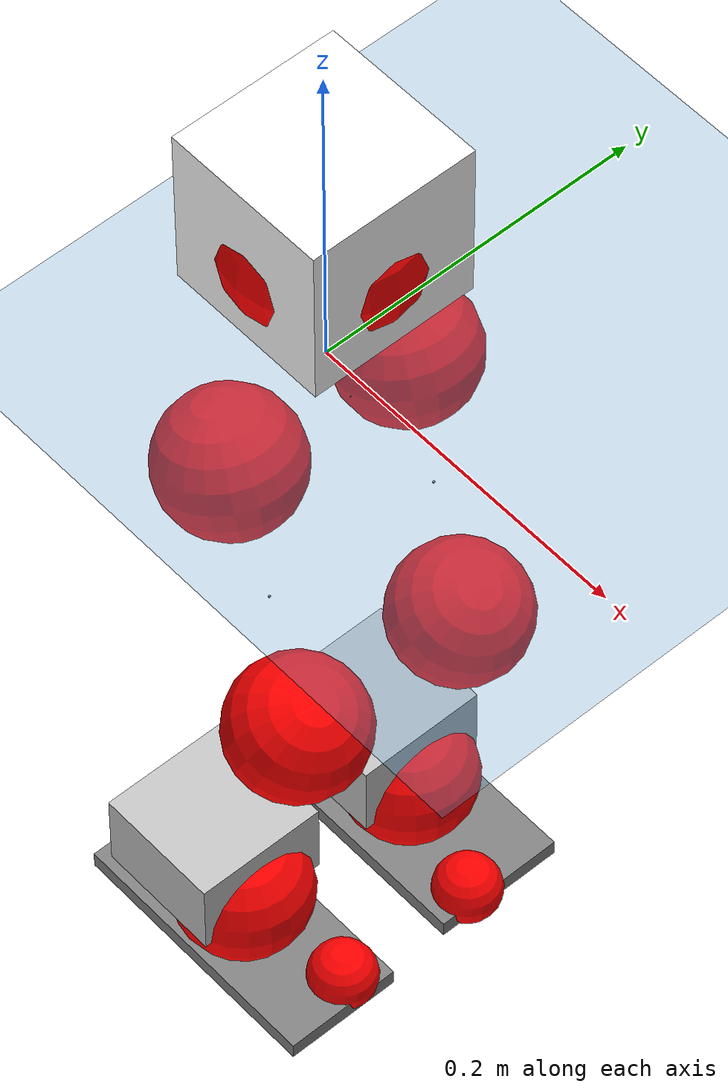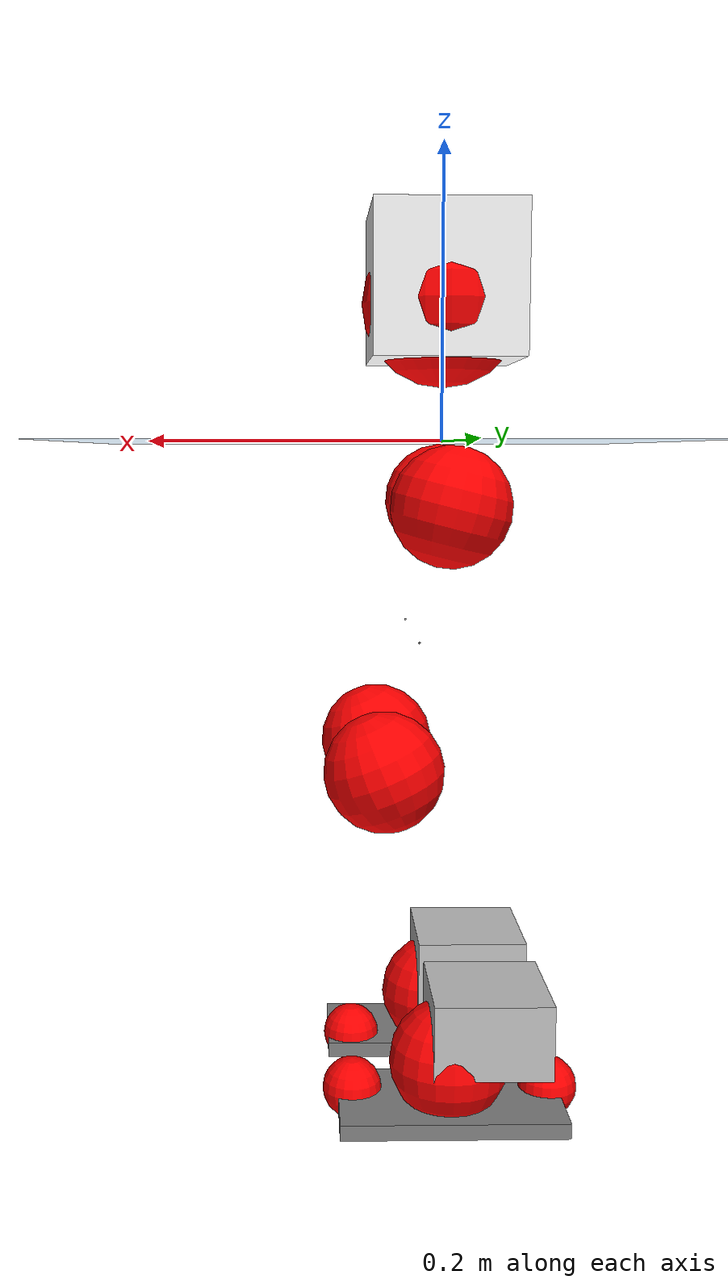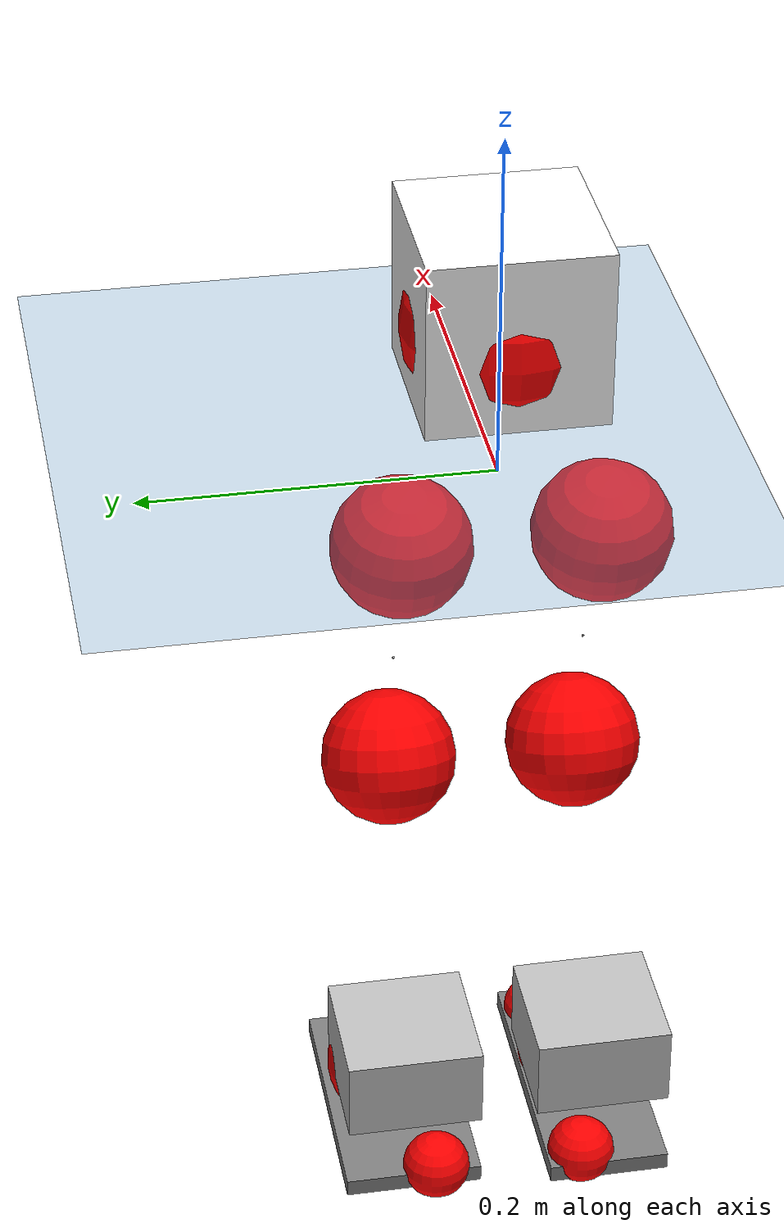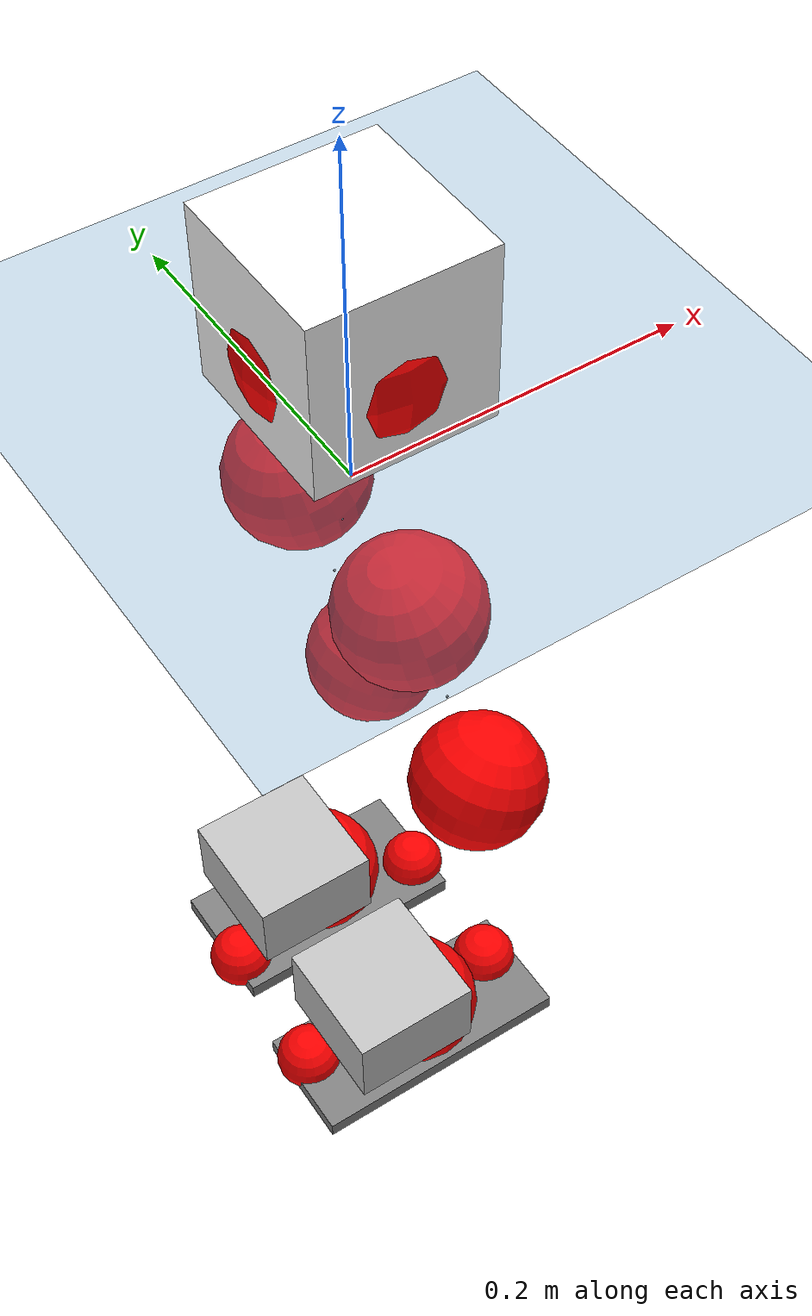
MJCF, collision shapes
<mujoco model="pi_12dof_release_v1">
  <compiler angle="radian" assetdir="assets" balanceinertia="true" inertiafromgeom="false"/>

  <option timestep="0.005" density="1.2" viscosity="2e-05"/>

  <size nkey="1"/>

  <visual>
    <quality shadowsize="8192"/>
    <map shadowclip="0.5"/>
  </visual>

  <default>
    <default class="/">
      <joint armature="0.01" damping="0.01" frictionloss="0.01"/>
      <geom contype="0" conaffinity="0" group="1" solref="-1000 -80"/>
      <site size="0.01 0.005 0.005" group="5"/>
      <general forcelimited="true" biastype="affine" gainprm="20" biasprm="0 -20 -0.5"/>
      <default class="foot">
        <geom size="0.0845 0.036 0.005" type="box" condim="6" group="4" priority="1" friction="0.9 0.2 0.2" solimp="0.015 1 0.005"/>
      </default>
      <default class="reward_collision_sphere">
        <geom group="5" rgba="1 0 0 1"/>
      </default>
    </default>
  </default>

  <asset>
    <texture type="skybox" colorspace="auto" name="//unnamed_texture_0" builtin="gradient" rgb1="0.95 0.95 0.95" rgb2="0.95 0.95 0.95" width="100" height="600"/>
    <texture type="2d" colorspace="auto" name="texplane" builtin="checker" rgb1="0.345 0.575 0.748" rgb2="0.345 0.575 0.748" markrgb="1 1 1" width="512" height="512"/>
    <material name="MatPlane" class="/" texture="texplane" texuniform="true" texrepeat="2 2" specular="0.9"/>
    <mesh name="baselink_1" class="/" file="baselink_1.STL"/>
    <mesh name="r_hip_pitch_link" class="/" file="r_hip_pitch_link.STL"/>
    <mesh name="r_hip_roll_link" class="/" file="r_hip_roll_link.STL"/>
    <mesh name="r_thigh_link" class="/" file="r_thigh_link.STL"/>
    <mesh name="r_calf_link" class="/" file="r_calf_link.STL"/>
    <mesh name="r_ankle_pitch_link" class="/" file="r_ankle_pitch_link.STL"/>
    <mesh name="r_ankle_roll_link" class="/" file="r_ankle_roll_link.STL"/>
    <mesh name="l_hip_pitch_link" class="/" file="l_hip_pitch_link.STL"/>
    <mesh name="l_hip_roll_link" class="/" file="l_hip_roll_link.STL"/>
    <mesh name="l_thigh_link" class="/" file="l_thigh_link.STL"/>
    <mesh name="l_calf_link" class="/" file="l_calf_link.STL"/>
    <mesh name="l_ankle_pitch_link" class="/" file="l_ankle_pitch_link.STL"/>
    <mesh name="l_ankle_roll_link" class="/" file="l_ankle_roll_link.STL"/>
  </asset>

  <worldbody>
    <geom name="floor" class="/" size="100 100 0.125" type="plane" group="0" material="MatPlane"/>
    <light name="toplight_shadow" class="/" pos="0 0 5" dir="0.0990148 0.0990148 -0.990148" type="directional" ambient="0.04 0.04 0.04" diffuse="0.55 0.55 0.55" specular="0.12 0.12 0.12"/>
    <light name="toplight_fill" class="/" pos="0 0 5" dir="0.0990148 0.0990148 -0.990148" type="directional" castshadow="false" ambient="0.04 0.04 0.04" diffuse="0.3 0.3 0.3" specular="0.08 0.08 0.08"/>
    <body name="trunk" pos="-3.85234e-06 -0.000228128 0.000962568" quat="1 7.14486e-06 -0.00073869 -0.000496119">
      <inertial pos="0.000856003 -0.00266888 0.0509146" quat="0.694682 0.00814365 0.00865392 0.719219" mass="2.24604" diaginertia="0.00945478 0.00185 0.0149792"/>
      <joint name="//unnamed_joint_0" type="free"/>
      <geom name="//unnamed_geom_1" class="/" type="mesh" density="0" rgba="1 1 1 1" mesh="baselink_1"/>
      <geom name="//unnamed_geom_2" class="/" size="0.050368 0.050368 0.050368" pos="0 0 0.103728" type="box" rgba="1 1 1 1"/>
      <geom name="//unnamed_geom_3" class="reward_collision_sphere" size="0.0554048" pos="0 0 0.0907617"/>
      <site name="imu" class="/" pos="0.0115572 -0.000910352 -0.0116468" size="0.0100736"/>
      <camera name="track" class="/" pos="0 -1.46146 0" quat="0.707107 0.707107 0 0" mode="trackcom"/>
      <camera name="ego_camera" class="/" pos="0.0746066 0 0.233387" quat="-0.5 -0.5 0.5 0.5"/>
      <body name="r_hip_pitch_link" pos="-0.0023202 -0.0195134 -0.0444256" quat="0.992197 -8.04384e-06 -0.124683 1.73656e-05">
        <inertial pos="0.000718601 -0.0440352 -0.000356156" quat="-0.0191682 0.706311 -0.0275666 0.707105" mass="0.381331" diaginertia="0.000104428 1.93506e-05 0.000297507"/>
        <joint name="r_hip_pitch_joint" class="/" pos="0 0 0" axis="-0.00425412 -0.99999 0.00122008" stiffness="0.0118593" range="-1.77345 1.20842" armature="0.00878517" damping="0.0135295" frictionloss="0.00927372"/>
        <geom name="//unnamed_geom_4" class="/" type="mesh" density="0" rgba="0.75294 0.75294 0.75294 1" mesh="r_hip_pitch_link"/>
        <geom name="//unnamed_geom_5" class="/" size="0.00050368 0.00050368 0.00050368" type="box" rgba="0.75294 0.75294 0.75294 1"/>
        <body name="r_hip_roll_link" pos="-0.00221991 -0.0391692 0.0025245" quat="0.999999 -0.00115176 -4.70166e-05 -0.000592561">
          <inertial pos="-0.00304698 -0.000490911 -0.0774422" quat="0.712456 -0.0800445 -0.0921427 0.69102" mass="0.387716" diaginertia="0.000330095 5.72966e-05 0.000479069"/>
          <joint name="r_hip_roll_joint" class="/" pos="0 0 0" axis="-0.999898 -0.00145878 -0.0142386" stiffness="0.000239102" range="-0.14273 0.500531" armature="0.00870102" damping="0.00255752" frictionloss="0.0111608"/>
          <geom name="//unnamed_geom_6" class="/" type="mesh" density="0" rgba="0.75294 0.75294 0.75294 1" mesh="r_hip_roll_link"/>
          <geom name="//unnamed_geom_7" class="/" size="0.00050368 0.00050368 0.00050368" type="box" rgba="0.75294 0.75294 0.75294 1"/>
          <geom name="//unnamed_geom_8" class="reward_collision_sphere" size="0.0402944"/>
          <body name="r_thigh_link" pos="0.00246698 0.00260886 -0.0909663" quat="1 4.7526e-05 3.34431e-06 1.20323e-06">
            <inertial pos="0.0002488 0.000333375 -0.0637279" quat="0.738426 0.674333 0.001131 -0.000625097" mass="0.116968" diaginertia="0.000118747 1.9674e-05 0.000213023"/>
            <joint name="r_thigh_joint" class="/" pos="0 0 0" axis="-0.00371049 -0.0034954 -0.999987" stiffness="0.00610296" range="-0.35789 0.607371" armature="0.0113133" damping="0" frictionloss="0.0111468"/>
            <geom name="//unnamed_geom_9" class="/" type="mesh" density="0" rgba="0.75294 0.75294 0.75294 1" mesh="r_thigh_link"/>
            <geom name="//unnamed_geom_10" class="/" size="0.00050368 0.00050368 0.00050368" type="box" rgba="0.75294 0.75294 0.75294 1"/>
            <body name="r_calf_link" pos="-0.00149361 -0.000976355 -0.091757" quat="0.947653 -8.65393e-06 0.319303 7.67096e-05">
              <inertial pos="-0.00315687 -0.00233366 -0.0932946" quat="0.999964 -0.00537084 -0.00645307 -0.00152648" mass="0.831038" diaginertia="0.0032725 0.000742276 0.000610114"/>
              <joint name="r_calf_joint" class="/" pos="0 0 0" axis="0.0111831 -0.999912 0.00715898" range="-1.65383 0.678279" armature="0.00896188" damping="0.00765181" frictionloss="0.00964509"/>
              <geom name="//unnamed_geom_11" class="/" type="mesh" density="0" rgba="0.75294 0.75294 0.75294 1" mesh="r_calf_link"/>
              <geom name="//unnamed_geom_12" class="/" size="0.00050368 0.00050368 0.00050368" type="box" rgba="0.75294 0.75294 0.75294 1"/>
              <geom name="//unnamed_geom_13" class="reward_collision_sphere" size="0.0402944"/>
              <body name="r_ankle_pitch_link" pos="0.00253551 -0.00138325 -0.183772" quat="0.980012 -0.00136618 -0.198934 -1.91746e-05">
                <inertial pos="0.00718071 0.00250158 -0.0026909" quat="-0.00885281 0.702803 -0.00134023 0.711329" mass="0.187816" diaginertia="0.000292272 4.50201e-05 0.000455602"/>
                <joint name="r_ankle_pitch_joint" class="/" pos="0 0 0" axis="0.00666552 -0.99992 -0.0107596" range="-1.24573 0.555692" armature="0.0113979" damping="0" frictionloss="0.0105793"/>
                <geom name="//unnamed_geom_14" class="/" type="mesh" density="0" rgba="0.75294 0.75294 0.75294 1" mesh="r_ankle_pitch_link"/>
                <geom name="//unnamed_geom_15" class="/" size="0.039287 0.0402944 0.025184" type="box" rgba="0.75294 0.75294 0.75294 1"/>
                <body name="r_ankle_roll_link" pos="0.0729147 -2.6365e-05 0.000731514" quat="0.999999 1.80877e-05 0.00116853 0.000308246">
                  <inertial pos="-0.0265835 7.02769e-05 -0.0193871" quat="0.567662 0.426145 0.430878 0.557229" mass="0.566113" diaginertia="0.00116278 0.000217314 0.00107795"/>
                  <joint name="r_ankle_roll_joint" class="/" pos="0 0 0" axis="-0.999916 0.0124448 -0.00349104" stiffness="0.00263615" range="-0.097241 0.157807" armature="0.0111497" damping="0.0139451" frictionloss="0.0101089"/>
                  <geom name="//unnamed_geom_16" class="/" type="mesh" density="0" rgba="0.75294 0.75294 0.75294 1" mesh="r_ankle_roll_link"/>
                  <geom name="//unnamed_geom_17" class="/" type="mesh" rgba="0.75294 0.75294 0.75294 1" mesh="r_ankle_roll_link"/>
                  <geom name="right_foot" class="foot" size="0.0828271 0.0358298 0.00525313" pos="-0.0507325 0 -0.0570502"/>
                  <geom name="//unnamed_geom_19" class="reward_collision_sphere" size="0.0402944" pos="-0.0497377 0 -0.0259319"/>
                  <geom name="//unnamed_geom_20" class="reward_collision_sphere" size="0.0201472" pos="0.0149213 0.0146146 -0.0518638"/>
                  <geom name="//unnamed_geom_21" class="reward_collision_sphere" size="0.0201472" pos="-0.119371 0.0146146 -0.0518638"/>
                  <site name="right_foot" class="foot" pos="-0.0507325 0 -0.0570502" size="0.0100736"/>
                </body>
              </body>
            </body>
          </body>
        </body>
      </body>
      <body name="l_hip_pitch_link" pos="0.00181549 0.0144185 -0.0451408" quat="0.992197 -9.45659e-05 -0.124683 -4.45104e-05">
        <inertial pos="0.000981532 0.0418791 -0.00228068" quat="-0.0428829 0.711037 0.0400359 0.700703" mass="0.408501" diaginertia="0.000130573 2.26083e-05 0.000368174"/>
        <joint name="l_hip_pitch_joint" class="/" pos="0 0 0" axis="-0.000512751 1 -4.39841e-05" range="-1.26444 1.75901" armature="0.00999408" damping="0.0246134" frictionloss="0.00868991"/>
        <geom name="//unnamed_geom_22" class="/" type="mesh" density="0" rgba="0.75294 0.75294 0.75294 1" mesh="l_hip_pitch_link"/>
        <geom name="//unnamed_geom_23" class="/" size="0.00050368 0.00050368 0.00050368" type="box" rgba="0.75294 0.75294 0.75294 1"/>
        <body name="l_hip_roll_link" pos="-0.00250686 0.0392926 0.00221166" quat="1 0.000242128 0.000346689 0.000394356">
          <inertial pos="-0.0035417 0.000850012 -0.0808547" quat="0.700912 -0.0749659 -0.0791793 0.704864" mass="0.376187" diaginertia="0.000306325 5.77619e-05 0.000461102"/>
          <joint name="l_hip_roll_joint" class="/" pos="0 0 0" axis="-0.999991 0.00123573 -0.00398657" range="-0.482208 0.124883" armature="0.0100463" damping="0.0198993" frictionloss="0.00884571"/>
          <geom name="//unnamed_geom_24" class="/" type="mesh" density="0" rgba="0.75294 0.75294 0.75294 1" mesh="l_hip_roll_link"/>
          <geom name="//unnamed_geom_25" class="/" size="0.00050368 0.00050368 0.00050368" type="box" rgba="0.75294 0.75294 0.75294 1"/>
          <geom name="//unnamed_geom_26" class="reward_collision_sphere" size="0.0402944"/>
          <body name="l_thigh_link" pos="-0.00226072 0.000835177 -0.0909523" quat="1 -0.000182726 0.00024277 4.58739e-05">
            <inertial pos="0.00238703 0.00132756 -0.0626354" quat="0.668577 0.743581 0.00847505 -0.00444006" mass="0.11757" diaginertia="0.000119611 2.07365e-05 0.000217463"/>
            <joint name="l_thigh_joint" class="/" pos="0 0 0" axis="0.000228332 -0.00155388 -0.999999" range="-0.644039 0.245314" armature="0.0104522" damping="0.00942316" frictionloss="0.0103341"/>
            <geom name="//unnamed_geom_27" class="/" type="mesh" density="0" rgba="0.75294 0.75294 0.75294 1" mesh="l_thigh_link"/>
            <geom name="//unnamed_geom_28" class="/" size="0.00050368 0.00050368 0.00050368" type="box" rgba="0.75294 0.75294 0.75294 1"/>
            <body name="l_calf_link" pos="0.000672701 -0.00126376 -0.0894105" quat="0.947876 -7.17656e-05 0.31864 -0.00027329">
              <inertial pos="-0.00221025 0.00407644 -0.0924644" quat="0.999965 0.00535332 -0.00588677 0.00241777" mass="0.842582" diaginertia="0.00334586 0.000718636 0.000628702"/>
              <joint name="l_calf_joint" class="/" pos="0 0 0" axis="-0.0137195 0.999901 -0.0032267" range="-0.657754 1.67432" armature="0.010369" damping="0" frictionloss="0.0106587"/>
              <geom name="//unnamed_geom_29" class="/" type="mesh" density="0" rgba="0.75294 0.75294 0.75294 1" mesh="l_calf_link"/>
              <geom name="//unnamed_geom_30" class="/" size="0.00050368 0.00050368 0.00050368" type="box" rgba="0.75294 0.75294 0.75294 1"/>
              <geom name="//unnamed_geom_31" class="reward_collision_sphere" size="0.0402944"/>
              <body name="l_ankle_pitch_link" pos="0.00177904 0.00219928 -0.184387" quat="0.979803 0.000239576 -0.199963 0.000176802">
                <inertial pos="0.00504204 0.00168784 -0.00064608" quat="-0.00337951 0.707389 0.00282041 0.706811" mass="0.16772" diaginertia="0.000279485 4.51804e-05 0.000430081"/>
                <joint name="l_ankle_pitch_joint" class="/" pos="0 0 0" axis="-0.000196596 1 0.000213135" range="-0.553623 1.24943" armature="0.00882342" damping="0.00667396" frictionloss="0.010865"/>
                <geom name="//unnamed_geom_32" class="/" type="mesh" density="0" rgba="0.75294 0.75294 0.75294 1" mesh="l_ankle_pitch_link"/>
                <geom name="//unnamed_geom_33" class="/" size="0.039287 0.0402944 0.025184" type="box" rgba="0.75294 0.75294 0.75294 1"/>
                <body name="l_ankle_roll_link" pos="0.0754132 0.00271353 -0.000546896" quat="0.999999 -0.000679837 0.000616095 -0.000513167">
                  <inertial pos="-0.0214656 -0.00273192 -0.0189762" quat="0.566156 0.418524 0.433401 0.562556" mass="0.534871" diaginertia="0.00107005 0.000214927 0.00100815"/>
                  <joint name="l_ankle_roll_joint" class="/" pos="0 0 0" axis="-1 0.000153635 -0.000973076" range="-0.0988155 0.0975806" armature="0.0116214" damping="0.0201433" frictionloss="0.010984"/>
                  <geom name="//unnamed_geom_34" class="/" type="mesh" density="0" rgba="0.75294 0.75294 0.75294 1" mesh="l_ankle_roll_link"/>
                  <geom name="//unnamed_geom_35" class="/" type="mesh" rgba="0.75294 0.75294 0.75294 1" mesh="l_ankle_roll_link"/>
                  <geom name="left_foot" class="foot" size="0.075301 0.0406807 0.00521231" pos="-0.0507325 0 -0.0570502"/>
                  <geom name="//unnamed_geom_37" class="reward_collision_sphere" size="0.0402944" pos="-0.0497377 0 -0.0259319"/>
                  <geom name="//unnamed_geom_38" class="reward_collision_sphere" size="0.0201472" pos="0.0149213 -0.0146146 -0.0518638"/>
                  <geom name="//unnamed_geom_39" class="reward_collision_sphere" size="0.0201472" pos="-0.119371 -0.0146146 -0.0518638"/>
                  <site name="left_foot" class="foot" pos="-0.0507325 0 -0.0570502" size="0.0100736"/>
                </body>
              </body>
            </body>
          </body>
        </body>
      </body>
    </body>
  </worldbody>

  <contact>
    <pair class="/" geom1="floor" geom2="right_foot" name="//unnamed_contact_1"/>
    <pair class="/" geom1="floor" geom2="left_foot" name="//unnamed_contact_0"/>
  </contact>

  <actuator>
    <general name="r_hip_pitch_joint" class="/" joint="r_hip_pitch_joint" forcerange="-23.4093 23.4093" gainprm="19.5107" biasprm="0 -19.5107 -0.486613"/>
    <general name="r_hip_roll_joint" class="/" joint="r_hip_roll_joint" forcerange="-21.0078 21.0078" gainprm="19.5107" biasprm="0 -19.5107 -0.486613"/>
    <general name="r_thigh_joint" class="/" joint="r_thigh_joint" forcerange="-20.494 20.494" gainprm="19.5107" biasprm="0 -19.5107 -0.486613"/>
    <general name="r_calf_joint" class="/" joint="r_calf_joint" forcerange="-23.0438 23.0438" gainprm="19.5107" biasprm="0 -19.5107 -0.486613"/>
    <general name="r_ankle_pitch_joint" class="/" joint="r_ankle_pitch_joint" forcerange="-20.4656 20.4656" gainprm="19.5107" biasprm="0 -19.5107 -0.486613"/>
    <general name="r_ankle_roll_joint" class="/" joint="r_ankle_roll_joint" forcerange="-22.0025 22.0025" gainprm="19.5107" biasprm="0 -19.5107 -0.486613"/>
    <general name="l_hip_pitch_joint" class="/" joint="l_hip_pitch_joint" forcerange="-18.9333 18.9333" gainprm="19.5107" biasprm="0 -19.5107 -0.486613"/>
    <general name="l_hip_roll_joint" class="/" joint="l_hip_roll_joint" forcerange="-19.4971 19.4971" gainprm="19.5107" biasprm="0 -19.5107 -0.486613"/>
    <general name="l_thigh_joint" class="/" joint="l_thigh_joint" forcerange="-20.4763 20.4763" gainprm="19.5107" biasprm="0 -19.5107 -0.486613"/>
    <general name="l_calf_joint" class="/" joint="l_calf_joint" forcerange="-21.3704 21.3704" gainprm="19.5107" biasprm="0 -19.5107 -0.486613"/>
    <general name="l_ankle_pitch_joint" class="/" joint="l_ankle_pitch_joint" forcerange="-23.3574 23.3574" gainprm="19.5107" biasprm="0 -19.5107 -0.486613"/>
    <general name="l_ankle_roll_joint" class="/" joint="l_ankle_roll_joint" forcerange="-21.6185 21.6185" gainprm="19.5107" biasprm="0 -19.5107 -0.486613"/>
  </actuator>

  <sensor>
    <gyro site="imu" name="imu_angular_velocity"/>
    <velocimeter site="imu" name="imu_linear_velocity"/>
    <framelinvel objtype="site" objname="left_foot" name="left_foot_global_linear_velocity"/>
    <framelinvel objtype="site" objname="right_foot" name="right_foot_global_linear_velocity"/>
  </sensor>

  <keyframe>
    <key name="home" qpos="0 0 0.291 1 0 0 0 0.4 0 0 -0.8 0.4 0 -0.4 0 0 0.8 -0.4 0"/>
  </keyframe>
</mujoco>
